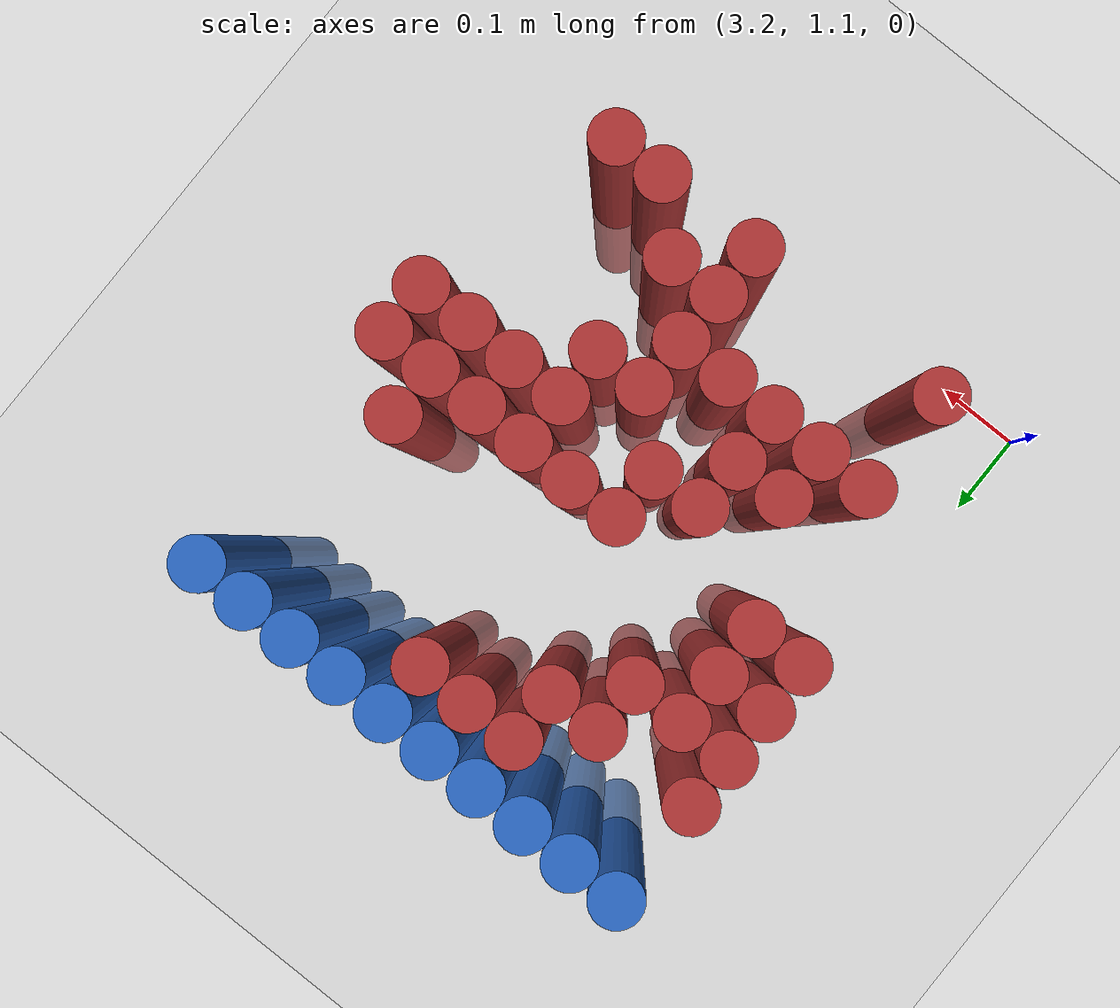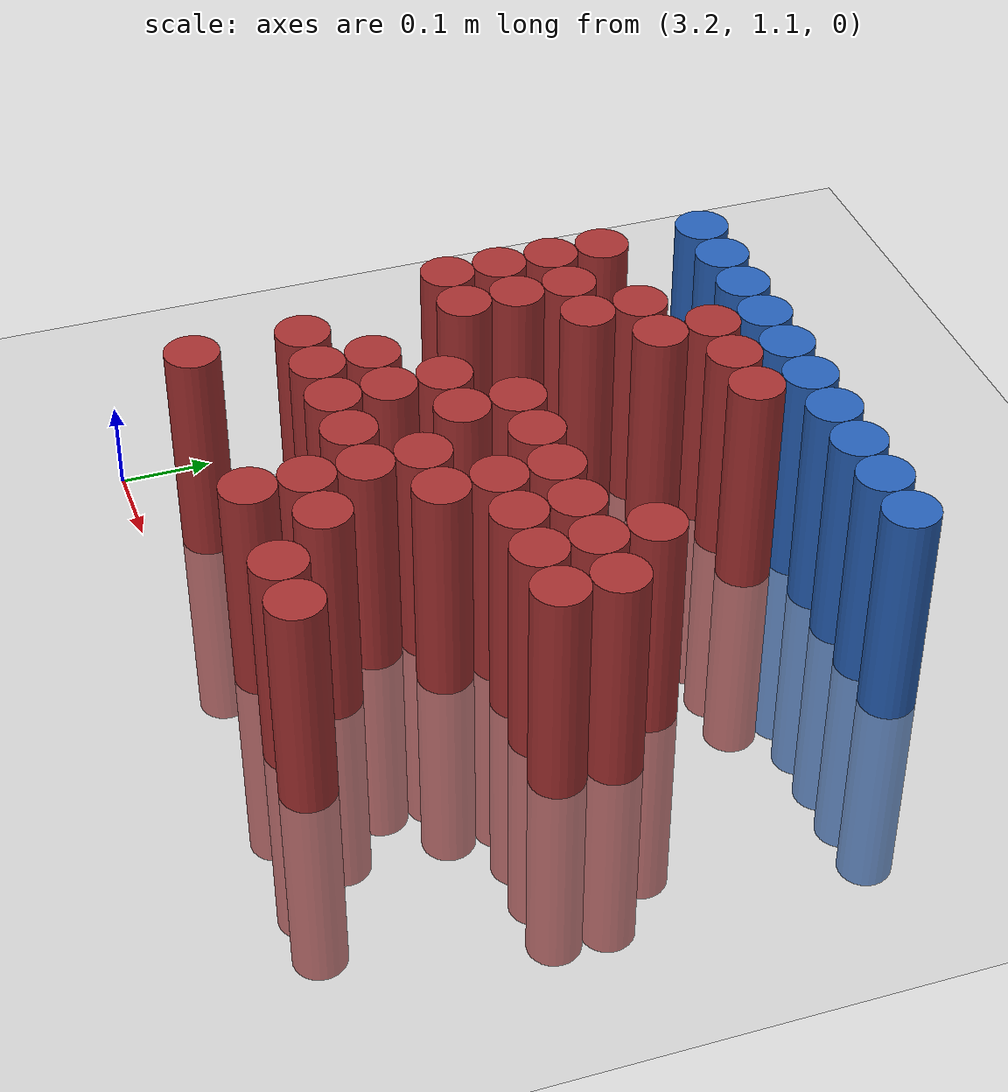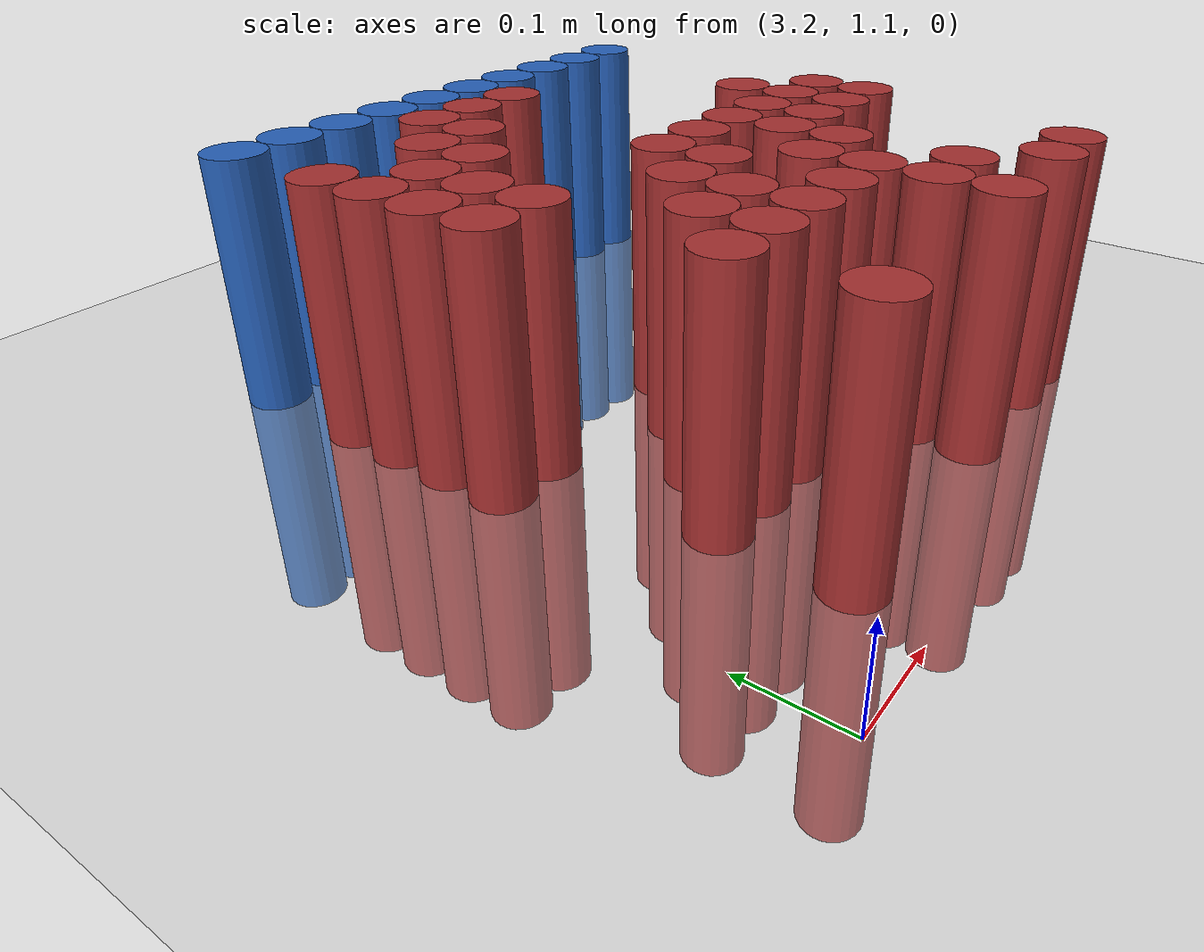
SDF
<sdf version="1.6">
 <world name="default">
  <model name="ground_plane">
   <static>1</static>
   <link name="link">
    <collision name="collision">
     <geometry><plane><normal>0 0 1</normal><size>100 100</size></plane></geometry>
     <surface><friction><ode><mu>100</mu><mu2>50</mu2></ode></friction></surface>
    </collision>
    <visual name="visual">
     <cast_shadows>0</cast_shadows>
     <geometry><plane><normal>0 0 1</normal><size>100 100</size></plane></geometry>
     <material>
      <script><uri>file://media/materials/scripts/gazebo.material</uri><name>Gazebo/Grey</name></script>
     </material>
    </visual>
   </link>
  </model>
  <model name="unit_cylinder_115">
   <static>1</static>
   <pose>3.270000 1.770000 0.000000 0.000000 0.000000 0.000000</pose>
   <link name="link">
    <inertial>
     <mass>1</mass>
     <inertia><ixx>0.145833</ixx><ixy>0</ixy><ixz>0</ixz><iyy>0.145833</iyy><iyz>0</iyz><izz>0.125</izz></inertia>
    </inertial>
    <collision name="collision">
     <geometry><cylinder><radius>0.030000</radius><length>0.5</length></cylinder></geometry>
    </collision>
    <visual name="visual">
     <geometry><cylinder><radius>0.030000</radius><length>0.5</length></cylinder></geometry>
     <material>
      <ambient>0.152000 0.379000 0.720000 1</ambient>
      <diffuse>0.152000 0.379000 0.720000 1</diffuse>
     </material>
     <material>
      <script><name>Gazebo/Grey</name><uri>file://media/materials/scripts/gazebo.material</uri></script>
     </material>
    </visual>
   </link>
  </model>
  <model name="unit_cylinder_116">
   <static>1</static>
   <pose>3.330000 1.770000 0.000000 0.000000 0.000000 0.000000</pose>
   <link name="link">
    <inertial>
     <mass>1</mass>
     <inertia><ixx>0.145833</ixx><ixy>0</ixy><ixz>0</ixz><iyy>0.145833</iyy><iyz>0</iyz><izz>0.125</izz></inertia>
    </inertial>
    <collision name="collision">
     <geometry><cylinder><radius>0.030000</radius><length>0.5</length></cylinder></geometry>
    </collision>
    <visual name="visual">
     <geometry><cylinder><radius>0.030000</radius><length>0.5</length></cylinder></geometry>
     <material>
      <ambient>0.152000 0.379000 0.720000 1</ambient>
      <diffuse>0.152000 0.379000 0.720000 1</diffuse>
     </material>
     <material>
      <script><name>Gazebo/Grey</name><uri>file://media/materials/scripts/gazebo.material</uri></script>
     </material>
    </visual>
   </link>
  </model>
  <model name="unit_cylinder_117">
   <static>1</static>
   <pose>3.390000 1.770000 0.000000 0.000000 0.000000 0.000000</pose>
   <link name="link">
    <inertial>
     <mass>1</mass>
     <inertia><ixx>0.145833</ixx><ixy>0</ixy><ixz>0</ixz><iyy>0.145833</iyy><iyz>0</iyz><izz>0.125</izz></inertia>
    </inertial>
    <collision name="collision">
     <geometry><cylinder><radius>0.030000</radius><length>0.5</length></cylinder></geometry>
    </collision>
    <visual name="visual">
     <geometry><cylinder><radius>0.030000</radius><length>0.5</length></cylinder></geometry>
     <material>
      <ambient>0.152000 0.379000 0.720000 1</ambient>
      <diffuse>0.152000 0.379000 0.720000 1</diffuse>
     </material>
     <material>
      <script><name>Gazebo/Grey</name><uri>file://media/materials/scripts/gazebo.material</uri></script>
     </material>
    </visual>
   </link>
  </model>
  <model name="unit_cylinder_118">
   <static>1</static>
   <pose>3.450000 1.770000 0.000000 0.000000 0.000000 0.000000</pose>
   <link name="link">
    <inertial>
     <mass>1</mass>
     <inertia><ixx>0.145833</ixx><ixy>0</ixy><ixz>0</ixz><iyy>0.145833</iyy><iyz>0</iyz><izz>0.125</izz></inertia>
    </inertial>
    <collision name="collision">
     <geometry><cylinder><radius>0.030000</radius><length>0.5</length></cylinder></geometry>
    </collision>
    <visual name="visual">
     <geometry><cylinder><radius>0.030000</radius><length>0.5</length></cylinder></geometry>
     <material>
      <ambient>0.152000 0.379000 0.720000 1</ambient>
      <diffuse>0.152000 0.379000 0.720000 1</diffuse>
     </material>
     <material>
      <script><name>Gazebo/Grey</name><uri>file://media/materials/scripts/gazebo.material</uri></script>
     </material>
    </visual>
   </link>
  </model>
  <model name="unit_cylinder_119">
   <static>1</static>
   <pose>3.510000 1.770000 0.000000 0.000000 0.000000 0.000000</pose>
   <link name="link">
    <inertial>
     <mass>1</mass>
     <inertia><ixx>0.145833</ixx><ixy>0</ixy><ixz>0</ixz><iyy>0.145833</iyy><iyz>0</iyz><izz>0.125</izz></inertia>
    </inertial>
    <collision name="collision">
     <geometry><cylinder><radius>0.030000</radius><length>0.5</length></cylinder></geometry>
    </collision>
    <visual name="visual">
     <geometry><cylinder><radius>0.030000</radius><length>0.5</length></cylinder></geometry>
     <material>
      <ambient>0.152000 0.379000 0.720000 1</ambient>
      <diffuse>0.152000 0.379000 0.720000 1</diffuse>
     </material>
     <material>
      <script><name>Gazebo/Grey</name><uri>file://media/materials/scripts/gazebo.material</uri></script>
     </material>
    </visual>
   </link>
  </model>
  <model name="unit_cylinder_120">
   <static>1</static>
   <pose>3.570000 1.770000 0.000000 0.000000 0.000000 0.000000</pose>
   <link name="link">
    <inertial>
     <mass>1</mass>
     <inertia><ixx>0.145833</ixx><ixy>0</ixy><ixz>0</ixz><iyy>0.145833</iyy><iyz>0</iyz><izz>0.125</izz></inertia>
    </inertial>
    <collision name="collision">
     <geometry><cylinder><radius>0.030000</radius><length>0.5</length></cylinder></geometry>
    </collision>
    <visual name="visual">
     <geometry><cylinder><radius>0.030000</radius><length>0.5</length></cylinder></geometry>
     <material>
      <ambient>0.152000 0.379000 0.720000 1</ambient>
      <diffuse>0.152000 0.379000 0.720000 1</diffuse>
     </material>
     <material>
      <script><name>Gazebo/Grey</name><uri>file://media/materials/scripts/gazebo.material</uri></script>
     </material>
    </visual>
   </link>
  </model>
  <model name="unit_cylinder_121">
   <static>1</static>
   <pose>3.630000 1.770000 0.000000 0.000000 0.000000 0.000000</pose>
   <link name="link">
    <inertial>
     <mass>1</mass>
     <inertia><ixx>0.145833</ixx><ixy>0</ixy><ixz>0</ixz><iyy>0.145833</iyy><iyz>0</iyz><izz>0.125</izz></inertia>
    </inertial>
    <collision name="collision">
     <geometry><cylinder><radius>0.030000</radius><length>0.5</length></cylinder></geometry>
    </collision>
    <visual name="visual">
     <geometry><cylinder><radius>0.030000</radius><length>0.5</length></cylinder></geometry>
     <material>
      <ambient>0.152000 0.379000 0.720000 1</ambient>
      <diffuse>0.152000 0.379000 0.720000 1</diffuse>
     </material>
     <material>
      <script><name>Gazebo/Grey</name><uri>file://media/materials/scripts/gazebo.material</uri></script>
     </material>
    </visual>
   </link>
  </model>
  <model name="unit_cylinder_122">
   <static>1</static>
   <pose>3.690000 1.770000 0.000000 0.000000 0.000000 0.000000</pose>
   <link name="link">
    <inertial>
     <mass>1</mass>
     <inertia><ixx>0.145833</ixx><ixy>0</ixy><ixz>0</ixz><iyy>0.145833</iyy><iyz>0</iyz><izz>0.125</izz></inertia>
    </inertial>
    <collision name="collision">
     <geometry><cylinder><radius>0.030000</radius><length>0.5</length></cylinder></geometry>
    </collision>
    <visual name="visual">
     <geometry><cylinder><radius>0.030000</radius><length>0.5</length></cylinder></geometry>
     <material>
      <ambient>0.152000 0.379000 0.720000 1</ambient>
      <diffuse>0.152000 0.379000 0.720000 1</diffuse>
     </material>
     <material>
      <script><name>Gazebo/Grey</name><uri>file://media/materials/scripts/gazebo.material</uri></script>
     </material>
    </visual>
   </link>
  </model>
  <model name="unit_cylinder_123">
   <static>1</static>
   <pose>3.750000 1.770000 0.000000 0.000000 0.000000 0.000000</pose>
   <link name="link">
    <inertial>
     <mass>1</mass>
     <inertia><ixx>0.145833</ixx><ixy>0</ixy><ixz>0</ixz><iyy>0.145833</iyy><iyz>0</iyz><izz>0.125</izz></inertia>
    </inertial>
    <collision name="collision">
     <geometry><cylinder><radius>0.030000</radius><length>0.5</length></cylinder></geometry>
    </collision>
    <visual name="visual">
     <geometry><cylinder><radius>0.030000</radius><length>0.5</length></cylinder></geometry>
     <material>
      <ambient>0.152000 0.379000 0.720000 1</ambient>
      <diffuse>0.152000 0.379000 0.720000 1</diffuse>
     </material>
     <material>
      <script><name>Gazebo/Grey</name><uri>file://media/materials/scripts/gazebo.material</uri></script>
     </material>
    </visual>
   </link>
  </model>
  <model name="unit_cylinder_124">
   <static>1</static>
   <pose>3.810000 1.770000 0.000000 0.000000 0.000000 0.000000</pose>
   <link name="link">
    <inertial>
     <mass>1</mass>
     <inertia><ixx>0.145833</ixx><ixy>0</ixy><ixz>0</ixz><iyy>0.145833</iyy><iyz>0</iyz><izz>0.125</izz></inertia>
    </inertial>
    <collision name="collision">
     <geometry><cylinder><radius>0.030000</radius><length>0.5</length></cylinder></geometry>
    </collision>
    <visual name="visual">
     <geometry><cylinder><radius>0.030000</radius><length>0.5</length></cylinder></geometry>
     <material>
      <ambient>0.152000 0.379000 0.720000 1</ambient>
      <diffuse>0.152000 0.379000 0.720000 1</diffuse>
     </material>
     <material>
      <script><name>Gazebo/Grey</name><uri>file://media/materials/scripts/gazebo.material</uri></script>
     </material>
    </visual>
   </link>
  </model>
  <model name="unit_cylinder_133">
   <static>1</static>
   <pose>3.450000 1.710000 0.000000 0.000000 0.000000 0.000000</pose>
   <link name="link">
    <inertial>
     <mass>1</mass>
     <inertia><ixx>0.145833</ixx><ixy>0</ixy><ixz>0</ixz><iyy>0.145833</iyy><iyz>0</iyz><izz>0.125</izz></inertia>
    </inertial>
    <collision name="collision">
     <geometry><cylinder><radius>0.030000</radius><length>0.5</length></cylinder></geometry>
    </collision>
    <visual name="visual">
     <geometry><cylinder><radius>0.030000</radius><length>0.5</length></cylinder></geometry>
     <material>
      <ambient>0.648000 0.192000 0.192000 1</ambient>
      <diffuse>0.648000 0.192000 0.192000 1</diffuse>
     </material>
     <material>
      <script><name>Gazebo/Grey</name><uri>file://media/materials/scripts/gazebo.material</uri></script>
     </material>
    </visual>
   </link>
  </model>
  <model name="unit_cylinder_134">
   <static>1</static>
   <pose>3.510000 1.710000 0.000000 0.000000 0.000000 0.000000</pose>
   <link name="link">
    <inertial>
     <mass>1</mass>
     <inertia><ixx>0.145833</ixx><ixy>0</ixy><ixz>0</ixz><iyy>0.145833</iyy><iyz>0</iyz><izz>0.125</izz></inertia>
    </inertial>
    <collision name="collision">
     <geometry><cylinder><radius>0.030000</radius><length>0.5</length></cylinder></geometry>
    </collision>
    <visual name="visual">
     <geometry><cylinder><radius>0.030000</radius><length>0.5</length></cylinder></geometry>
     <material>
      <ambient>0.648000 0.192000 0.192000 1</ambient>
      <diffuse>0.648000 0.192000 0.192000 1</diffuse>
     </material>
     <material>
      <script><name>Gazebo/Grey</name><uri>file://media/materials/scripts/gazebo.material</uri></script>
     </material>
    </visual>
   </link>
  </model>
  <model name="unit_cylinder_135">
   <static>1</static>
   <pose>3.570000 1.710000 0.000000 0.000000 0.000000 0.000000</pose>
   <link name="link">
    <inertial>
     <mass>1</mass>
     <inertia><ixx>0.145833</ixx><ixy>0</ixy><ixz>0</ixz><iyy>0.145833</iyy><iyz>0</iyz><izz>0.125</izz></inertia>
    </inertial>
    <collision name="collision">
     <geometry><cylinder><radius>0.030000</radius><length>0.5</length></cylinder></geometry>
    </collision>
    <visual name="visual">
     <geometry><cylinder><radius>0.030000</radius><length>0.5</length></cylinder></geometry>
     <material>
      <ambient>0.648000 0.192000 0.192000 1</ambient>
      <diffuse>0.648000 0.192000 0.192000 1</diffuse>
     </material>
     <material>
      <script><name>Gazebo/Grey</name><uri>file://media/materials/scripts/gazebo.material</uri></script>
     </material>
    </visual>
   </link>
  </model>
  <model name="unit_cylinder_143">
   <static>1</static>
   <pose>3.270000 1.650000 0.000000 0.000000 0.000000 0.000000</pose>
   <link name="link">
    <inertial>
     <mass>1</mass>
     <inertia><ixx>0.145833</ixx><ixy>0</ixy><ixz>0</ixz><iyy>0.145833</iyy><iyz>0</iyz><izz>0.125</izz></inertia>
    </inertial>
    <collision name="collision">
     <geometry><cylinder><radius>0.030000</radius><length>0.5</length></cylinder></geometry>
    </collision>
    <visual name="visual">
     <geometry><cylinder><radius>0.030000</radius><length>0.5</length></cylinder></geometry>
     <material>
      <ambient>0.648000 0.192000 0.192000 1</ambient>
      <diffuse>0.648000 0.192000 0.192000 1</diffuse>
     </material>
     <material>
      <script><name>Gazebo/Grey</name><uri>file://media/materials/scripts/gazebo.material</uri></script>
     </material>
    </visual>
   </link>
  </model>
  <model name="unit_cylinder_144">
   <static>1</static>
   <pose>3.390000 1.650000 0.000000 0.000000 0.000000 0.000000</pose>
   <link name="link">
    <inertial>
     <mass>1</mass>
     <inertia><ixx>0.145833</ixx><ixy>0</ixy><ixz>0</ixz><iyy>0.145833</iyy><iyz>0</iyz><izz>0.125</izz></inertia>
    </inertial>
    <collision name="collision">
     <geometry><cylinder><radius>0.030000</radius><length>0.5</length></cylinder></geometry>
    </collision>
    <visual name="visual">
     <geometry><cylinder><radius>0.030000</radius><length>0.5</length></cylinder></geometry>
     <material>
      <ambient>0.648000 0.192000 0.192000 1</ambient>
      <diffuse>0.648000 0.192000 0.192000 1</diffuse>
     </material>
     <material>
      <script><name>Gazebo/Grey</name><uri>file://media/materials/scripts/gazebo.material</uri></script>
     </material>
    </visual>
   </link>
  </model>
  <model name="unit_cylinder_145">
   <static>1</static>
   <pose>3.450000 1.650000 0.000000 0.000000 0.000000 0.000000</pose>
   <link name="link">
    <inertial>
     <mass>1</mass>
     <inertia><ixx>0.145833</ixx><ixy>0</ixy><ixz>0</ixz><iyy>0.145833</iyy><iyz>0</iyz><izz>0.125</izz></inertia>
    </inertial>
    <collision name="collision">
     <geometry><cylinder><radius>0.030000</radius><length>0.5</length></cylinder></geometry>
    </collision>
    <visual name="visual">
     <geometry><cylinder><radius>0.030000</radius><length>0.5</length></cylinder></geometry>
     <material>
      <ambient>0.648000 0.192000 0.192000 1</ambient>
      <diffuse>0.648000 0.192000 0.192000 1</diffuse>
     </material>
     <material>
      <script><name>Gazebo/Grey</name><uri>file://media/materials/scripts/gazebo.material</uri></script>
     </material>
    </visual>
   </link>
  </model>
  <model name="unit_cylinder_150">
   <static>1</static>
   <pose>3.270000 1.590000 0.000000 0.000000 0.000000 0.000000</pose>
   <link name="link">
    <inertial>
     <mass>1</mass>
     <inertia><ixx>0.145833</ixx><ixy>0</ixy><ixz>0</ixz><iyy>0.145833</iyy><iyz>0</iyz><izz>0.125</izz></inertia>
    </inertial>
    <collision name="collision">
     <geometry><cylinder><radius>0.030000</radius><length>0.5</length></cylinder></geometry>
    </collision>
    <visual name="visual">
     <geometry><cylinder><radius>0.030000</radius><length>0.5</length></cylinder></geometry>
     <material>
      <ambient>0.648000 0.192000 0.192000 1</ambient>
      <diffuse>0.648000 0.192000 0.192000 1</diffuse>
     </material>
     <material>
      <script><name>Gazebo/Grey</name><uri>file://media/materials/scripts/gazebo.material</uri></script>
     </material>
    </visual>
   </link>
  </model>
  <model name="unit_cylinder_151">
   <static>1</static>
   <pose>3.330000 1.590000 0.000000 0.000000 0.000000 0.000000</pose>
   <link name="link">
    <inertial>
     <mass>1</mass>
     <inertia><ixx>0.145833</ixx><ixy>0</ixy><ixz>0</ixz><iyy>0.145833</iyy><iyz>0</iyz><izz>0.125</izz></inertia>
    </inertial>
    <collision name="collision">
     <geometry><cylinder><radius>0.030000</radius><length>0.5</length></cylinder></geometry>
    </collision>
    <visual name="visual">
     <geometry><cylinder><radius>0.030000</radius><length>0.5</length></cylinder></geometry>
     <material>
      <ambient>0.648000 0.192000 0.192000 1</ambient>
      <diffuse>0.648000 0.192000 0.192000 1</diffuse>
     </material>
     <material>
      <script><name>Gazebo/Grey</name><uri>file://media/materials/scripts/gazebo.material</uri></script>
     </material>
    </visual>
   </link>
  </model>
  <model name="unit_cylinder_152">
   <static>1</static>
   <pose>3.390000 1.590000 0.000000 0.000000 0.000000 0.000000</pose>
   <link name="link">
    <inertial>
     <mass>1</mass>
     <inertia><ixx>0.145833</ixx><ixy>0</ixy><ixz>0</ixz><iyy>0.145833</iyy><iyz>0</iyz><izz>0.125</izz></inertia>
    </inertial>
    <collision name="collision">
     <geometry><cylinder><radius>0.030000</radius><length>0.5</length></cylinder></geometry>
    </collision>
    <visual name="visual">
     <geometry><cylinder><radius>0.030000</radius><length>0.5</length></cylinder></geometry>
     <material>
      <ambient>0.648000 0.192000 0.192000 1</ambient>
      <diffuse>0.648000 0.192000 0.192000 1</diffuse>
     </material>
     <material>
      <script><name>Gazebo/Grey</name><uri>file://media/materials/scripts/gazebo.material</uri></script>
     </material>
    </visual>
   </link>
  </model>
  <model name="unit_cylinder_157">
   <static>1</static>
   <pose>3.270000 1.530000 0.000000 0.000000 0.000000 0.000000</pose>
   <link name="link">
    <inertial>
     <mass>1</mass>
     <inertia><ixx>0.145833</ixx><ixy>0</ixy><ixz>0</ixz><iyy>0.145833</iyy><iyz>0</iyz><izz>0.125</izz></inertia>
    </inertial>
    <collision name="collision">
     <geometry><cylinder><radius>0.030000</radius><length>0.5</length></cylinder></geometry>
    </collision>
    <visual name="visual">
     <geometry><cylinder><radius>0.030000</radius><length>0.5</length></cylinder></geometry>
     <material>
      <ambient>0.648000 0.192000 0.192000 1</ambient>
      <diffuse>0.648000 0.192000 0.192000 1</diffuse>
     </material>
     <material>
      <script><name>Gazebo/Grey</name><uri>file://media/materials/scripts/gazebo.material</uri></script>
     </material>
    </visual>
   </link>
  </model>
  <model name="unit_cylinder_158">
   <static>1</static>
   <pose>3.330000 1.530000 0.000000 0.000000 0.000000 0.000000</pose>
   <link name="link">
    <inertial>
     <mass>1</mass>
     <inertia><ixx>0.145833</ixx><ixy>0</ixy><ixz>0</ixz><iyy>0.145833</iyy><iyz>0</iyz><izz>0.125</izz></inertia>
    </inertial>
    <collision name="collision">
     <geometry><cylinder><radius>0.030000</radius><length>0.5</length></cylinder></geometry>
    </collision>
    <visual name="visual">
     <geometry><cylinder><radius>0.030000</radius><length>0.5</length></cylinder></geometry>
     <material>
      <ambient>0.648000 0.192000 0.192000 1</ambient>
      <diffuse>0.648000 0.192000 0.192000 1</diffuse>
     </material>
     <material>
      <script><name>Gazebo/Grey</name><uri>file://media/materials/scripts/gazebo.material</uri></script>
     </material>
    </visual>
   </link>
  </model>
  <model name="unit_cylinder_159">
   <static>1</static>
   <pose>3.750000 1.530000 0.000000 0.000000 0.000000 0.000000</pose>
   <link name="link">
    <inertial>
     <mass>1</mass>
     <inertia><ixx>0.145833</ixx><ixy>0</ixy><ixz>0</ixz><iyy>0.145833</iyy><iyz>0</iyz><izz>0.125</izz></inertia>
    </inertial>
    <collision name="collision">
     <geometry><cylinder><radius>0.030000</radius><length>0.5</length></cylinder></geometry>
    </collision>
    <visual name="visual">
     <geometry><cylinder><radius>0.030000</radius><length>0.5</length></cylinder></geometry>
     <material>
      <ambient>0.648000 0.192000 0.192000 1</ambient>
      <diffuse>0.648000 0.192000 0.192000 1</diffuse>
     </material>
     <material>
      <script><name>Gazebo/Grey</name><uri>file://media/materials/scripts/gazebo.material</uri></script>
     </material>
    </visual>
   </link>
  </model>
  <model name="unit_cylinder_167">
   <static>1</static>
   <pose>3.270000 1.470000 0.000000 0.000000 0.000000 0.000000</pose>
   <link name="link">
    <inertial>
     <mass>1</mass>
     <inertia><ixx>0.145833</ixx><ixy>0</ixy><ixz>0</ixz><iyy>0.145833</iyy><iyz>0</iyz><izz>0.125</izz></inertia>
    </inertial>
    <collision name="collision">
     <geometry><cylinder><radius>0.030000</radius><length>0.5</length></cylinder></geometry>
    </collision>
    <visual name="visual">
     <geometry><cylinder><radius>0.030000</radius><length>0.5</length></cylinder></geometry>
     <material>
      <ambient>0.648000 0.192000 0.192000 1</ambient>
      <diffuse>0.648000 0.192000 0.192000 1</diffuse>
     </material>
     <material>
      <script><name>Gazebo/Grey</name><uri>file://media/materials/scripts/gazebo.material</uri></script>
     </material>
    </visual>
   </link>
  </model>
  <model name="unit_cylinder_168">
   <static>1</static>
   <pose>3.330000 1.470000 0.000000 0.000000 0.000000 0.000000</pose>
   <link name="link">
    <inertial>
     <mass>1</mass>
     <inertia><ixx>0.145833</ixx><ixy>0</ixy><ixz>0</ixz><iyy>0.145833</iyy><iyz>0</iyz><izz>0.125</izz></inertia>
    </inertial>
    <collision name="collision">
     <geometry><cylinder><radius>0.030000</radius><length>0.5</length></cylinder></geometry>
    </collision>
    <visual name="visual">
     <geometry><cylinder><radius>0.030000</radius><length>0.5</length></cylinder></geometry>
     <material>
      <ambient>0.648000 0.192000 0.192000 1</ambient>
      <diffuse>0.648000 0.192000 0.192000 1</diffuse>
     </material>
     <material>
      <script><name>Gazebo/Grey</name><uri>file://media/materials/scripts/gazebo.material</uri></script>
     </material>
    </visual>
   </link>
  </model>
  <model name="unit_cylinder_169">
   <static>1</static>
   <pose>3.510000 1.470000 0.000000 0.000000 0.000000 0.000000</pose>
   <link name="link">
    <inertial>
     <mass>1</mass>
     <inertia><ixx>0.145833</ixx><ixy>0</ixy><ixz>0</ixz><iyy>0.145833</iyy><iyz>0</iyz><izz>0.125</izz></inertia>
    </inertial>
    <collision name="collision">
     <geometry><cylinder><radius>0.030000</radius><length>0.5</length></cylinder></geometry>
    </collision>
    <visual name="visual">
     <geometry><cylinder><radius>0.030000</radius><length>0.5</length></cylinder></geometry>
     <material>
      <ambient>0.648000 0.192000 0.192000 1</ambient>
      <diffuse>0.648000 0.192000 0.192000 1</diffuse>
     </material>
     <material>
      <script><name>Gazebo/Grey</name><uri>file://media/materials/scripts/gazebo.material</uri></script>
     </material>
    </visual>
   </link>
  </model>
  <model name="unit_cylinder_170">
   <static>1</static>
   <pose>3.570000 1.470000 0.000000 0.000000 0.000000 0.000000</pose>
   <link name="link">
    <inertial>
     <mass>1</mass>
     <inertia><ixx>0.145833</ixx><ixy>0</ixy><ixz>0</ixz><iyy>0.145833</iyy><iyz>0</iyz><izz>0.125</izz></inertia>
    </inertial>
    <collision name="collision">
     <geometry><cylinder><radius>0.030000</radius><length>0.5</length></cylinder></geometry>
    </collision>
    <visual name="visual">
     <geometry><cylinder><radius>0.030000</radius><length>0.5</length></cylinder></geometry>
     <material>
      <ambient>0.648000 0.192000 0.192000 1</ambient>
      <diffuse>0.648000 0.192000 0.192000 1</diffuse>
     </material>
     <material>
      <script><name>Gazebo/Grey</name><uri>file://media/materials/scripts/gazebo.material</uri></script>
     </material>
    </visual>
   </link>
  </model>
  <model name="unit_cylinder_171">
   <static>1</static>
   <pose>3.630000 1.470000 0.000000 0.000000 0.000000 0.000000</pose>
   <link name="link">
    <inertial>
     <mass>1</mass>
     <inertia><ixx>0.145833</ixx><ixy>0</ixy><ixz>0</ixz><iyy>0.145833</iyy><iyz>0</iyz><izz>0.125</izz></inertia>
    </inertial>
    <collision name="collision">
     <geometry><cylinder><radius>0.030000</radius><length>0.5</length></cylinder></geometry>
    </collision>
    <visual name="visual">
     <geometry><cylinder><radius>0.030000</radius><length>0.5</length></cylinder></geometry>
     <material>
      <ambient>0.648000 0.192000 0.192000 1</ambient>
      <diffuse>0.648000 0.192000 0.192000 1</diffuse>
     </material>
     <material>
      <script><name>Gazebo/Grey</name><uri>file://media/materials/scripts/gazebo.material</uri></script>
     </material>
    </visual>
   </link>
  </model>
  <model name="unit_cylinder_172">
   <static>1</static>
   <pose>3.690000 1.470000 0.000000 0.000000 0.000000 0.000000</pose>
   <link name="link">
    <inertial>
     <mass>1</mass>
     <inertia><ixx>0.145833</ixx><ixy>0</ixy><ixz>0</ixz><iyy>0.145833</iyy><iyz>0</iyz><izz>0.125</izz></inertia>
    </inertial>
    <collision name="collision">
     <geometry><cylinder><radius>0.030000</radius><length>0.5</length></cylinder></geometry>
    </collision>
    <visual name="visual">
     <geometry><cylinder><radius>0.030000</radius><length>0.5</length></cylinder></geometry>
     <material>
      <ambient>0.648000 0.192000 0.192000 1</ambient>
      <diffuse>0.648000 0.192000 0.192000 1</diffuse>
     </material>
     <material>
      <script><name>Gazebo/Grey</name><uri>file://media/materials/scripts/gazebo.material</uri></script>
     </material>
    </visual>
   </link>
  </model>
  <model name="unit_cylinder_173">
   <static>1</static>
   <pose>3.750000 1.470000 0.000000 0.000000 0.000000 0.000000</pose>
   <link name="link">
    <inertial>
     <mass>1</mass>
     <inertia><ixx>0.145833</ixx><ixy>0</ixy><ixz>0</ixz><iyy>0.145833</iyy><iyz>0</iyz><izz>0.125</izz></inertia>
    </inertial>
    <collision name="collision">
     <geometry><cylinder><radius>0.030000</radius><length>0.5</length></cylinder></geometry>
    </collision>
    <visual name="visual">
     <geometry><cylinder><radius>0.030000</radius><length>0.5</length></cylinder></geometry>
     <material>
      <ambient>0.648000 0.192000 0.192000 1</ambient>
      <diffuse>0.648000 0.192000 0.192000 1</diffuse>
     </material>
     <material>
      <script><name>Gazebo/Grey</name><uri>file://media/materials/scripts/gazebo.material</uri></script>
     </material>
    </visual>
   </link>
  </model>
  <model name="unit_cylinder_174">
   <static>1</static>
   <pose>3.810000 1.470000 0.000000 0.000000 0.000000 0.000000</pose>
   <link name="link">
    <inertial>
     <mass>1</mass>
     <inertia><ixx>0.145833</ixx><ixy>0</ixy><ixz>0</ixz><iyy>0.145833</iyy><iyz>0</iyz><izz>0.125</izz></inertia>
    </inertial>
    <collision name="collision">
     <geometry><cylinder><radius>0.030000</radius><length>0.5</length></cylinder></geometry>
    </collision>
    <visual name="visual">
     <geometry><cylinder><radius>0.030000</radius><length>0.5</length></cylinder></geometry>
     <material>
      <ambient>0.648000 0.192000 0.192000 1</ambient>
      <diffuse>0.648000 0.192000 0.192000 1</diffuse>
     </material>
     <material>
      <script><name>Gazebo/Grey</name><uri>file://media/materials/scripts/gazebo.material</uri></script>
     </material>
    </visual>
   </link>
  </model>
  <model name="unit_cylinder_184">
   <static>1</static>
   <pose>3.450000 1.410000 0.000000 0.000000 0.000000 0.000000</pose>
   <link name="link">
    <inertial>
     <mass>1</mass>
     <inertia><ixx>0.145833</ixx><ixy>0</ixy><ixz>0</ixz><iyy>0.145833</iyy><iyz>0</iyz><izz>0.125</izz></inertia>
    </inertial>
    <collision name="collision">
     <geometry><cylinder><radius>0.030000</radius><length>0.5</length></cylinder></geometry>
    </collision>
    <visual name="visual">
     <geometry><cylinder><radius>0.030000</radius><length>0.5</length></cylinder></geometry>
     <material>
      <ambient>0.648000 0.192000 0.192000 1</ambient>
      <diffuse>0.648000 0.192000 0.192000 1</diffuse>
     </material>
     <material>
      <script><name>Gazebo/Grey</name><uri>file://media/materials/scripts/gazebo.material</uri></script>
     </material>
    </visual>
   </link>
  </model>
  <model name="unit_cylinder_185">
   <static>1</static>
   <pose>3.510000 1.410000 0.000000 0.000000 0.000000 0.000000</pose>
   <link name="link">
    <inertial>
     <mass>1</mass>
     <inertia><ixx>0.145833</ixx><ixy>0</ixy><ixz>0</ixz><iyy>0.145833</iyy><iyz>0</iyz><izz>0.125</izz></inertia>
    </inertial>
    <collision name="collision">
     <geometry><cylinder><radius>0.030000</radius><length>0.5</length></cylinder></geometry>
    </collision>
    <visual name="visual">
     <geometry><cylinder><radius>0.030000</radius><length>0.5</length></cylinder></geometry>
     <material>
      <ambient>0.648000 0.192000 0.192000 1</ambient>
      <diffuse>0.648000 0.192000 0.192000 1</diffuse>
     </material>
     <material>
      <script><name>Gazebo/Grey</name><uri>file://media/materials/scripts/gazebo.material</uri></script>
     </material>
    </visual>
   </link>
  </model>
  <model name="unit_cylinder_186">
   <static>1</static>
   <pose>3.630000 1.410000 0.000000 0.000000 0.000000 0.000000</pose>
   <link name="link">
    <inertial>
     <mass>1</mass>
     <inertia><ixx>0.145833</ixx><ixy>0</ixy><ixz>0</ixz><iyy>0.145833</iyy><iyz>0</iyz><izz>0.125</izz></inertia>
    </inertial>
    <collision name="collision">
     <geometry><cylinder><radius>0.030000</radius><length>0.5</length></cylinder></geometry>
    </collision>
    <visual name="visual">
     <geometry><cylinder><radius>0.030000</radius><length>0.5</length></cylinder></geometry>
     <material>
      <ambient>0.648000 0.192000 0.192000 1</ambient>
      <diffuse>0.648000 0.192000 0.192000 1</diffuse>
     </material>
     <material>
      <script><name>Gazebo/Grey</name><uri>file://media/materials/scripts/gazebo.material</uri></script>
     </material>
    </visual>
   </link>
  </model>
  <model name="unit_cylinder_187">
   <static>1</static>
   <pose>3.690000 1.410000 0.000000 0.000000 0.000000 0.000000</pose>
   <link name="link">
    <inertial>
     <mass>1</mass>
     <inertia><ixx>0.145833</ixx><ixy>0</ixy><ixz>0</ixz><iyy>0.145833</iyy><iyz>0</iyz><izz>0.125</izz></inertia>
    </inertial>
    <collision name="collision">
     <geometry><cylinder><radius>0.030000</radius><length>0.5</length></cylinder></geometry>
    </collision>
    <visual name="visual">
     <geometry><cylinder><radius>0.030000</radius><length>0.5</length></cylinder></geometry>
     <material>
      <ambient>0.648000 0.192000 0.192000 1</ambient>
      <diffuse>0.648000 0.192000 0.192000 1</diffuse>
     </material>
     <material>
      <script><name>Gazebo/Grey</name><uri>file://media/materials/scripts/gazebo.material</uri></script>
     </material>
    </visual>
   </link>
  </model>
  <model name="unit_cylinder_188">
   <static>1</static>
   <pose>3.750000 1.410000 0.000000 0.000000 0.000000 0.000000</pose>
   <link name="link">
    <inertial>
     <mass>1</mass>
     <inertia><ixx>0.145833</ixx><ixy>0</ixy><ixz>0</ixz><iyy>0.145833</iyy><iyz>0</iyz><izz>0.125</izz></inertia>
    </inertial>
    <collision name="collision">
     <geometry><cylinder><radius>0.030000</radius><length>0.5</length></cylinder></geometry>
    </collision>
    <visual name="visual">
     <geometry><cylinder><radius>0.030000</radius><length>0.5</length></cylinder></geometry>
     <material>
      <ambient>0.648000 0.192000 0.192000 1</ambient>
      <diffuse>0.648000 0.192000 0.192000 1</diffuse>
     </material>
     <material>
      <script><name>Gazebo/Grey</name><uri>file://media/materials/scripts/gazebo.material</uri></script>
     </material>
    </visual>
   </link>
  </model>
  <model name="unit_cylinder_189">
   <static>1</static>
   <pose>3.810000 1.410000 0.000000 0.000000 0.000000 0.000000</pose>
   <link name="link">
    <inertial>
     <mass>1</mass>
     <inertia><ixx>0.145833</ixx><ixy>0</ixy><ixz>0</ixz><iyy>0.145833</iyy><iyz>0</iyz><izz>0.125</izz></inertia>
    </inertial>
    <collision name="collision">
     <geometry><cylinder><radius>0.030000</radius><length>0.5</length></cylinder></geometry>
    </collision>
    <visual name="visual">
     <geometry><cylinder><radius>0.030000</radius><length>0.5</length></cylinder></geometry>
     <material>
      <ambient>0.648000 0.192000 0.192000 1</ambient>
      <diffuse>0.648000 0.192000 0.192000 1</diffuse>
     </material>
     <material>
      <script><name>Gazebo/Grey</name><uri>file://media/materials/scripts/gazebo.material</uri></script>
     </material>
    </visual>
   </link>
  </model>
  <model name="unit_cylinder_195">
   <static>1</static>
   <pose>3.390000 1.350000 0.000000 0.000000 0.000000 0.000000</pose>
   <link name="link">
    <inertial>
     <mass>1</mass>
     <inertia><ixx>0.145833</ixx><ixy>0</ixy><ixz>0</ixz><iyy>0.145833</iyy><iyz>0</iyz><izz>0.125</izz></inertia>
    </inertial>
    <collision name="collision">
     <geometry><cylinder><radius>0.030000</radius><length>0.5</length></cylinder></geometry>
    </collision>
    <visual name="visual">
     <geometry><cylinder><radius>0.030000</radius><length>0.5</length></cylinder></geometry>
     <material>
      <ambient>0.648000 0.192000 0.192000 1</ambient>
      <diffuse>0.648000 0.192000 0.192000 1</diffuse>
     </material>
     <material>
      <script><name>Gazebo/Grey</name><uri>file://media/materials/scripts/gazebo.material</uri></script>
     </material>
    </visual>
   </link>
  </model>
  <model name="unit_cylinder_196">
   <static>1</static>
   <pose>3.450000 1.350000 0.000000 0.000000 0.000000 0.000000</pose>
   <link name="link">
    <inertial>
     <mass>1</mass>
     <inertia><ixx>0.145833</ixx><ixy>0</ixy><ixz>0</ixz><iyy>0.145833</iyy><iyz>0</iyz><izz>0.125</izz></inertia>
    </inertial>
    <collision name="collision">
     <geometry><cylinder><radius>0.030000</radius><length>0.5</length></cylinder></geometry>
    </collision>
    <visual name="visual">
     <geometry><cylinder><radius>0.030000</radius><length>0.5</length></cylinder></geometry>
     <material>
      <ambient>0.648000 0.192000 0.192000 1</ambient>
      <diffuse>0.648000 0.192000 0.192000 1</diffuse>
     </material>
     <material>
      <script><name>Gazebo/Grey</name><uri>file://media/materials/scripts/gazebo.material</uri></script>
     </material>
    </visual>
   </link>
  </model>
  <model name="unit_cylinder_197">
   <static>1</static>
   <pose>3.570000 1.350000 0.000000 0.000000 0.000000 0.000000</pose>
   <link name="link">
    <inertial>
     <mass>1</mass>
     <inertia><ixx>0.145833</ixx><ixy>0</ixy><ixz>0</ixz><iyy>0.145833</iyy><iyz>0</iyz><izz>0.125</izz></inertia>
    </inertial>
    <collision name="collision">
     <geometry><cylinder><radius>0.030000</radius><length>0.5</length></cylinder></geometry>
    </collision>
    <visual name="visual">
     <geometry><cylinder><radius>0.030000</radius><length>0.5</length></cylinder></geometry>
     <material>
      <ambient>0.648000 0.192000 0.192000 1</ambient>
      <diffuse>0.648000 0.192000 0.192000 1</diffuse>
     </material>
     <material>
      <script><name>Gazebo/Grey</name><uri>file://media/materials/scripts/gazebo.material</uri></script>
     </material>
    </visual>
   </link>
  </model>
  <model name="unit_cylinder_198">
   <static>1</static>
   <pose>3.630000 1.350000 0.000000 0.000000 0.000000 0.000000</pose>
   <link name="link">
    <inertial>
     <mass>1</mass>
     <inertia><ixx>0.145833</ixx><ixy>0</ixy><ixz>0</ixz><iyy>0.145833</iyy><iyz>0</iyz><izz>0.125</izz></inertia>
    </inertial>
    <collision name="collision">
     <geometry><cylinder><radius>0.030000</radius><length>0.5</length></cylinder></geometry>
    </collision>
    <visual name="visual">
     <geometry><cylinder><radius>0.030000</radius><length>0.5</length></cylinder></geometry>
     <material>
      <ambient>0.648000 0.192000 0.192000 1</ambient>
      <diffuse>0.648000 0.192000 0.192000 1</diffuse>
     </material>
     <material>
      <script><name>Gazebo/Grey</name><uri>file://media/materials/scripts/gazebo.material</uri></script>
     </material>
    </visual>
   </link>
  </model>
  <model name="unit_cylinder_205">
   <static>1</static>
   <pose>3.330000 1.290000 0.000000 0.000000 0.000000 0.000000</pose>
   <link name="link">
    <inertial>
     <mass>1</mass>
     <inertia><ixx>0.145833</ixx><ixy>0</ixy><ixz>0</ixz><iyy>0.145833</iyy><iyz>0</iyz><izz>0.125</izz></inertia>
    </inertial>
    <collision name="collision">
     <geometry><cylinder><radius>0.030000</radius><length>0.5</length></cylinder></geometry>
    </collision>
    <visual name="visual">
     <geometry><cylinder><radius>0.030000</radius><length>0.5</length></cylinder></geometry>
     <material>
      <ambient>0.648000 0.192000 0.192000 1</ambient>
      <diffuse>0.648000 0.192000 0.192000 1</diffuse>
     </material>
     <material>
      <script><name>Gazebo/Grey</name><uri>file://media/materials/scripts/gazebo.material</uri></script>
     </material>
    </visual>
   </link>
  </model>
  <model name="unit_cylinder_206">
   <static>1</static>
   <pose>3.390000 1.290000 0.000000 0.000000 0.000000 0.000000</pose>
   <link name="link">
    <inertial>
     <mass>1</mass>
     <inertia><ixx>0.145833</ixx><ixy>0</ixy><ixz>0</ixz><iyy>0.145833</iyy><iyz>0</iyz><izz>0.125</izz></inertia>
    </inertial>
    <collision name="collision">
     <geometry><cylinder><radius>0.030000</radius><length>0.5</length></cylinder></geometry>
    </collision>
    <visual name="visual">
     <geometry><cylinder><radius>0.030000</radius><length>0.5</length></cylinder></geometry>
     <material>
      <ambient>0.648000 0.192000 0.192000 1</ambient>
      <diffuse>0.648000 0.192000 0.192000 1</diffuse>
     </material>
     <material>
      <script><name>Gazebo/Grey</name><uri>file://media/materials/scripts/gazebo.material</uri></script>
     </material>
    </visual>
   </link>
  </model>
  <model name="unit_cylinder_207">
   <static>1</static>
   <pose>3.450000 1.290000 0.000000 0.000000 0.000000 0.000000</pose>
   <link name="link">
    <inertial>
     <mass>1</mass>
     <inertia><ixx>0.145833</ixx><ixy>0</ixy><ixz>0</ixz><iyy>0.145833</iyy><iyz>0</iyz><izz>0.125</izz></inertia>
    </inertial>
    <collision name="collision">
     <geometry><cylinder><radius>0.030000</radius><length>0.5</length></cylinder></geometry>
    </collision>
    <visual name="visual">
     <geometry><cylinder><radius>0.030000</radius><length>0.5</length></cylinder></geometry>
     <material>
      <ambient>0.648000 0.192000 0.192000 1</ambient>
      <diffuse>0.648000 0.192000 0.192000 1</diffuse>
     </material>
     <material>
      <script><name>Gazebo/Grey</name><uri>file://media/materials/scripts/gazebo.material</uri></script>
     </material>
    </visual>
   </link>
  </model>
  <model name="unit_cylinder_208">
   <static>1</static>
   <pose>3.510000 1.290000 0.000000 0.000000 0.000000 0.000000</pose>
   <link name="link">
    <inertial>
     <mass>1</mass>
     <inertia><ixx>0.145833</ixx><ixy>0</ixy><ixz>0</ixz><iyy>0.145833</iyy><iyz>0</iyz><izz>0.125</izz></inertia>
    </inertial>
    <collision name="collision">
     <geometry><cylinder><radius>0.030000</radius><length>0.5</length></cylinder></geometry>
    </collision>
    <visual name="visual">
     <geometry><cylinder><radius>0.030000</radius><length>0.5</length></cylinder></geometry>
     <material>
      <ambient>0.648000 0.192000 0.192000 1</ambient>
      <diffuse>0.648000 0.192000 0.192000 1</diffuse>
     </material>
     <material>
      <script><name>Gazebo/Grey</name><uri>file://media/materials/scripts/gazebo.material</uri></script>
     </material>
    </visual>
   </link>
  </model>
  <model name="unit_cylinder_209">
   <static>1</static>
   <pose>3.570000 1.290000 0.000000 0.000000 0.000000 0.000000</pose>
   <link name="link">
    <inertial>
     <mass>1</mass>
     <inertia><ixx>0.145833</ixx><ixy>0</ixy><ixz>0</ixz><iyy>0.145833</iyy><iyz>0</iyz><izz>0.125</izz></inertia>
    </inertial>
    <collision name="collision">
     <geometry><cylinder><radius>0.030000</radius><length>0.5</length></cylinder></geometry>
    </collision>
    <visual name="visual">
     <geometry><cylinder><radius>0.030000</radius><length>0.5</length></cylinder></geometry>
     <material>
      <ambient>0.648000 0.192000 0.192000 1</ambient>
      <diffuse>0.648000 0.192000 0.192000 1</diffuse>
     </material>
     <material>
      <script><name>Gazebo/Grey</name><uri>file://media/materials/scripts/gazebo.material</uri></script>
     </material>
    </visual>
   </link>
  </model>
  <model name="unit_cylinder_214">
   <static>1</static>
   <pose>3.570000 1.230000 0.000000 0.000000 0.000000 0.000000</pose>
   <link name="link">
    <inertial>
     <mass>1</mass>
     <inertia><ixx>0.145833</ixx><ixy>0</ixy><ixz>0</ixz><iyy>0.145833</iyy><iyz>0</iyz><izz>0.125</izz></inertia>
    </inertial>
    <collision name="collision">
     <geometry><cylinder><radius>0.030000</radius><length>0.5</length></cylinder></geometry>
    </collision>
    <visual name="visual">
     <geometry><cylinder><radius>0.030000</radius><length>0.5</length></cylinder></geometry>
     <material>
      <ambient>0.648000 0.192000 0.192000 1</ambient>
      <diffuse>0.648000 0.192000 0.192000 1</diffuse>
     </material>
     <material>
      <script><name>Gazebo/Grey</name><uri>file://media/materials/scripts/gazebo.material</uri></script>
     </material>
    </visual>
   </link>
  </model>
  <model name="unit_cylinder_215">
   <static>1</static>
   <pose>3.630000 1.230000 0.000000 0.000000 0.000000 0.000000</pose>
   <link name="link">
    <inertial>
     <mass>1</mass>
     <inertia><ixx>0.145833</ixx><ixy>0</ixy><ixz>0</ixz><iyy>0.145833</iyy><iyz>0</iyz><izz>0.125</izz></inertia>
    </inertial>
    <collision name="collision">
     <geometry><cylinder><radius>0.030000</radius><length>0.5</length></cylinder></geometry>
    </collision>
    <visual name="visual">
     <geometry><cylinder><radius>0.030000</radius><length>0.5</length></cylinder></geometry>
     <material>
      <ambient>0.648000 0.192000 0.192000 1</ambient>
      <diffuse>0.648000 0.192000 0.192000 1</diffuse>
     </material>
     <material>
      <script><name>Gazebo/Grey</name><uri>file://media/materials/scripts/gazebo.material</uri></script>
     </material>
    </visual>
   </link>
  </model>
  <model name="unit_cylinder_222">
   <static>1</static>
   <pose>3.330000 1.170000 0.000000 0.000000 0.000000 0.000000</pose>
   <link name="link">
    <inertial>
     <mass>1</mass>
     <inertia><ixx>0.145833</ixx><ixy>0</ixy><ixz>0</ixz><iyy>0.145833</iyy><iyz>0</iyz><izz>0.125</izz></inertia>
    </inertial>
    <collision name="collision">
     <geometry><cylinder><radius>0.030000</radius><length>0.5</length></cylinder></geometry>
    </collision>
    <visual name="visual">
     <geometry><cylinder><radius>0.030000</radius><length>0.5</length></cylinder></geometry>
     <material>
      <ambient>0.648000 0.192000 0.192000 1</ambient>
      <diffuse>0.648000 0.192000 0.192000 1</diffuse>
     </material>
     <material>
      <script><name>Gazebo/Grey</name><uri>file://media/materials/scripts/gazebo.material</uri></script>
     </material>
    </visual>
   </link>
  </model>
  <model name="unit_cylinder_223">
   <static>1</static>
   <pose>3.570000 1.170000 0.000000 0.000000 0.000000 0.000000</pose>
   <link name="link">
    <inertial>
     <mass>1</mass>
     <inertia><ixx>0.145833</ixx><ixy>0</ixy><ixz>0</ixz><iyy>0.145833</iyy><iyz>0</iyz><izz>0.125</izz></inertia>
    </inertial>
    <collision name="collision">
     <geometry><cylinder><radius>0.030000</radius><length>0.5</length></cylinder></geometry>
    </collision>
    <visual name="visual">
     <geometry><cylinder><radius>0.030000</radius><length>0.5</length></cylinder></geometry>
     <material>
      <ambient>0.648000 0.192000 0.192000 1</ambient>
      <diffuse>0.648000 0.192000 0.192000 1</diffuse>
     </material>
     <material>
      <script><name>Gazebo/Grey</name><uri>file://media/materials/scripts/gazebo.material</uri></script>
     </material>
    </visual>
   </link>
  </model>
  <model name="unit_cylinder_224">
   <static>1</static>
   <pose>3.690000 1.170000 0.000000 0.000000 0.000000 0.000000</pose>
   <link name="link">
    <inertial>
     <mass>1</mass>
     <inertia><ixx>0.145833</ixx><ixy>0</ixy><ixz>0</ixz><iyy>0.145833</iyy><iyz>0</iyz><izz>0.125</izz></inertia>
    </inertial>
    <collision name="collision">
     <geometry><cylinder><radius>0.030000</radius><length>0.5</length></cylinder></geometry>
    </collision>
    <visual name="visual">
     <geometry><cylinder><radius>0.030000</radius><length>0.5</length></cylinder></geometry>
     <material>
      <ambient>0.648000 0.192000 0.192000 1</ambient>
      <diffuse>0.648000 0.192000 0.192000 1</diffuse>
     </material>
     <material>
      <script><name>Gazebo/Grey</name><uri>file://media/materials/scripts/gazebo.material</uri></script>
     </material>
    </visual>
   </link>
  </model>
  <model name="unit_cylinder_225">
   <static>1</static>
   <pose>3.750000 1.170000 0.000000 0.000000 0.000000 0.000000</pose>
   <link name="link">
    <inertial>
     <mass>1</mass>
     <inertia><ixx>0.145833</ixx><ixy>0</ixy><ixz>0</ixz><iyy>0.145833</iyy><iyz>0</iyz><izz>0.125</izz></inertia>
    </inertial>
    <collision name="collision">
     <geometry><cylinder><radius>0.030000</radius><length>0.5</length></cylinder></geometry>
    </collision>
    <visual name="visual">
     <geometry><cylinder><radius>0.030000</radius><length>0.5</length></cylinder></geometry>
     <material>
      <ambient>0.648000 0.192000 0.192000 1</ambient>
      <diffuse>0.648000 0.192000 0.192000 1</diffuse>
     </material>
     <material>
      <script><name>Gazebo/Grey</name><uri>file://media/materials/scripts/gazebo.material</uri></script>
     </material>
    </visual>
   </link>
  </model>
 </world>
</sdf>
